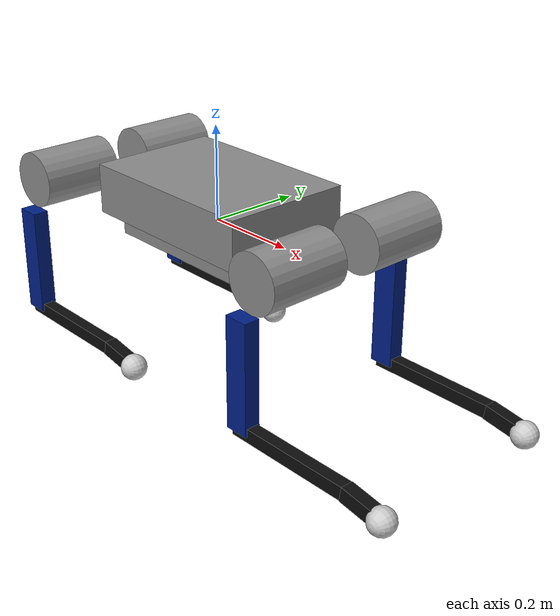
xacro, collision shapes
<?xml version="1.0" encoding="utf-8"?>
<robot name="raibo2" xmlns:xacro="http://www.ros.org/wiki/xacro">

  <!-- ==================== Materials ==================== -->
  <material name="black">
    <color rgba="0.05 0.05 0.05 1.0"/>
  </material>
  <material name="blue">
    <color rgba="0.0 0.125 0.53 1.0"/>
  </material>
  <material name="white">
    <color rgba="0.8 0.8 0.8 1"/>
  </material>
  <material name="light_gray">
    <color rgba="0.55 0.55 0.55 1"/>
  </material>

  <!--Gazebo dummy root link -->
  <link name="dummy_root"/>

  <!-- ==================== TORSO / Base Link ==================== -->
  <link name="TORSO">
    <inertial>
      <origin xyz="-0.00656127 -0.00245156 0.04792171" rpy="0 0 0" />
      <mass value="17.85853726" />
      <inertia ixx="0.16133121" ixy="-0.02266443" ixz="-0.00329293"
               iyy="0.45026183" iyz="0.00163597" izz="0.57496634" />
    </inertial>
    <visual>
      <origin xyz="0 0 0" rpy="0 0 0" />
      <geometry>
        <mesh filename="package://gardo_description/meshes/TORSO.STL" />
      </geometry>
      <material name="light_gray"/>
    </visual>
    <collision>
      <origin xyz="0 0 0.045" rpy="0 0 0" />
      <geometry>
        <box size="0.4200 0.28 0.105"/>
      </geometry>
    </collision>
    <collision>
      <origin xyz="0 0.0745 -0.0375" rpy="0 0 0" />
      <geometry>
        <box size="0.410 0.030 0.060"/>
      </geometry>
    </collision>
    <collision>
      <origin xyz="0 -0.0745 -0.0375" rpy="0 0 0" />
      <geometry>
        <box size="0.410 0.030 0.060"/>
      </geometry>
    </collision>
  </link>
  <joint name="dummy_to_base" type="fixed">
    <parent link="dummy_root"/>
    <child link="TORSO"/>
    <origin xyz="0 0 0" rpy="0 0 0"/>
  </joint>
  <!-- ==================== XACRO MACROS FOR LEGS ==================== -->

  <!-- Hip Macro -->
  <xacro:macro name="hip_link_and_joint" params="prefix joint_xyz col_y mass ix ixz iy iz axis_x">
    <link name="${prefix}_HIP">
      <inertial>
        <origin xyz="-0.03352808 ${col_y} 0.00003383" rpy="0 0 0" />
        <mass value="${mass}" />
        <inertia ixx="${ix}" ixy="-0.00143781" ixz="${ixz}" iyy="${iy}" iyz="-0.00000298" izz="${iz}" />
      </inertial>
      <visual>
        <origin xyz="0 0 0" rpy="0 0 0" />
        <geometry>
          <mesh filename="package://gardo_description/meshes/${prefix}_HIP.STL" />
        </geometry>
        <material name="light_gray"/>
      </visual>
      <collision>
        <origin rpy="1.57079632679 0 0" xyz="0 ${col_y} 0"/>
        <geometry>
          <cylinder length="0.17404" radius="0.0595"/>
        </geometry>
      </collision>
    </link>

    <joint name="${prefix}_HAA" type="revolute">
      <origin xyz="${joint_xyz}" rpy="0 0 0" />
      <parent link="TORSO" />
      <child link="${prefix}_HIP" />
      <axis xyz="${axis_x} 0 0" />
      <limit lower="-1.5708" upper="1.5708" effort="90.8558" velocity="30.0091" />
      <dynamics damping="0.0" friction="0.0" rotor_inertia="0.022811353" />
    </joint>
  </xacro:macro>

  <!-- Thigh Macro -->
  <xacro:macro name="thigh_link_and_joint" params="prefix joint_y mass ix ixy ixz iy iyz iz">
    <link name="${prefix}_THIGH">
      <inertial>
        <origin xyz="-0.00555044 ${joint_y/2} -0.02775098" rpy="0 0 0" />
        <mass value="${mass}" />
        <inertia ixx="${ix}" ixy="${ixy}" ixz="${ixz}" iyy="${iy}" iyz="${iyz}" izz="${iz}" />
      </inertial>
      <visual>
        <origin xyz="0 0 0" rpy="0 0 0" />
        <geometry>
          <mesh filename="package://gardo_description/meshes/${prefix}_THIGH.STL" />
        </geometry>
        <material name="blue"/>
      </visual>
      <collision>
        <origin rpy="0 0 0" xyz="-0.04575 0 -0.20283"/>
        <geometry>
          <box size="0.05150 0.03446 0.23435"/>
        </geometry>
      </collision>
    </link>

    <joint name="${prefix}_HFE" type="revolute">
      <origin xyz="0 ${joint_y} 0" rpy="0 0 0" />
      <parent link="${prefix}_HIP" />
      <child link="${prefix}_THIGH" />
      <axis xyz="0 1 0" />
      <limit lower="-6.2832" upper="6.2832" effort="90.8558" velocity="30.0091" />
      <dynamics damping="0.0" friction="0.0" rotor_inertia="0.022811353" />
    </joint>
  </xacro:macro>

  <!-- Shank Macro -->
  <xacro:macro name="shank_link_and_joint" params="prefix ixy iyz">
    <link name="${prefix}_SHANK">
      <inertial>
        <origin xyz="-0.00047821 0.00002607 -0.07606014" rpy="0 0 0" />
        <mass value="0.32743890" />
        <inertia ixx="0.00335434" ixy="${ixy}" ixz="0.00002929" iyy="0.00336066" iyz="${iyz}" izz="0.00006285" />
      </inertial>
      <visual>
        <origin xyz="0 0 0" rpy="0 0 0" />
        <geometry>
          <mesh filename="package://gardo_description/meshes/${prefix}_SHANK.STL" />
        </geometry>
        <material name="black"/>
      </visual>
      <collision>
        <origin rpy="0 1.528031849 0" xyz="0.00606 0 -0.08162"/>
        <geometry>
          <box size="0.2865 0.02586 0.029"/>
        </geometry>
      </collision>
      <collision>
        <origin rpy="0 1.688031849 0" xyz="0.00666 0 -0.26162"/>
        <geometry>
          <box size="0.0865 0.02686 0.031"/>
        </geometry>
      </collision>
    </link>

    <joint name="${prefix}_KFE" type="revolute">
      <origin xyz="0 0 -0.32" rpy="0 0 0" />
      <parent link="${prefix}_THIGH" />
      <child link="${prefix}_SHANK" />
      <axis xyz="0 1 0" />
      <limit lower="-2.6417" upper="-0.41469" effort="90.8558" velocity="30.0091" />
      <dynamics damping="0.0" friction="0.0" rotor_inertia="0.022811353" />
    </joint>
  </xacro:macro>

  <!-- Foot Macro -->
  <xacro:macro name="foot_link_and_joint" params="prefix">
    <link name="${prefix}_FOOT">
      <inertial>
        <origin xyz="0.00070079 0.00010019 0.00430738" rpy="0 0 0" />
        <mass value="0.10268513" />
        <inertia ixx="0.00002730" ixy="0.00000000" ixz="-0.00000058" iyy="0.00002753" iyz="0.00000003" izz="0.00003039" />
      </inertial>

      <!-- Shift visual up by radius (0.0275) so link origin is at the bottom -->
      <visual>
        <origin xyz="0 0 0" rpy="0 0 0" />
        <geometry>
          <mesh filename="package://gardo_description/meshes/${prefix}_FOOT.STL" />
        </geometry>
        <material name="white"/>
      </visual>

      <!-- Shift collision up by radius (0.0275) so link origin is at the bottom -->
      <collision>
        <origin rpy="1.57079632679 0 0" xyz="0 0 0"/>
        <geometry>
          <sphere radius="0.0275"/>
        </geometry>
        <material name="">
          <contact name="${prefix}_FOOT_MATERIAL"/>
        </material>
      </collision>
    </link>

    <joint name="${prefix}_S2F" type="fixed">
      <!-- Keep your original joint length; the link origin is now shifted to the ground contact -->
      <origin xyz="0 0 -0.30404017" rpy="0 0 0" />
      <parent link="${prefix}_SHANK" />
      <child link="${prefix}_FOOT" />
      <axis xyz="0 0 0" />
    </joint>
  </xacro:macro>

  <!-- Full Leg Assembly Wrapper Macro -->
  <xacro:macro name="make_leg" params="prefix joint_xyz col_y hip_mass hip_ix hip_ixz hip_iy hip_iz thigh_y thigh_mass thigh_ix thigh_ixy thigh_ixz thigh_iy thigh_iyz thigh_iz shank_ixy shank_iyz axis_x">
    <xacro:hip_link_and_joint prefix="${prefix}" joint_xyz="${joint_xyz}" col_y="${col_y}" mass="${hip_mass}" ix="${hip_ix}" ixz="${hip_ixz}" iy="${hip_iy}" iz="${hip_iz}" axis_x="${axis_x}" />
    <xacro:thigh_link_and_joint prefix="${prefix}" joint_y="${thigh_y}" mass="${thigh_mass}" ix="${thigh_ix}" ixy="${thigh_ixy}" ixz="${thigh_ixz}" iy="${thigh_iy}" iyz="${thigh_iyz}" iz="${thigh_iz}" />
    <xacro:shank_link_and_joint prefix="${prefix}" ixy="${shank_ixy}" iyz="${shank_iyz}" />
    <xacro:foot_link_and_joint prefix="${prefix}" />
  </xacro:macro>

  <!-- ==================== LEG INSTANTIATIONS ==================== -->

  <!-- Left Front (LF) Leg -->
  <xacro:make_leg prefix="LF" joint_xyz="0.34740000 0.10150000 0.04350000" col_y="0.02652"
                  hip_mass="1.95398841" hip_ix="0.00348543" hip_ixz="-0.00000041" hip_iy="0.00824115" hip_iz="0.00733533"
                  thigh_y="0.09453000" thigh_mass="3.12189597" thigh_ix="0.02699740" thigh_ixy="-0.00084218" thigh_ixz="0.00244569" thigh_iy="0.02501054" thigh_iyz="-0.00419581" thigh_iz="0.00901983"
                  shank_ixy="0.00000000" shank_iyz="0.00000162" axis_x="1" />

  <!-- Right Front (RF) Leg -->
  <xacro:make_leg prefix="RF" joint_xyz="0.34740000 -0.10150000 0.04350000" col_y="-0.02652"
                  hip_mass="1.95398841" hip_ix="0.00348565" hip_ixz="0.00000079" hip_iy="0.00823964" hip_iz="0.00733359"
                  thigh_y="-0.09453000" thigh_mass="3.12189613" thigh_ix="0.02697992" thigh_ixy="0.00084612" thigh_ixz="0.00244736" thigh_iy="0.02499526" thigh_iyz="0.00418673" thigh_iz="0.00902204"
                  shank_ixy="0.00000000" shank_iyz="0.00000282" axis_x="1" />

  <!-- Left Hind (LH) Leg -->
  <xacro:make_leg prefix="LH" joint_xyz="-0.34740000 0.10150000 0.04350000" col_y="0.02652"
                  hip_mass="1.95398841" hip_ix="0.00348543" hip_ixz="-0.00000041" hip_iy="0.00824115" hip_iz="0.00733533"
                  thigh_y="0.09453000" thigh_mass="3.12189597" thigh_ix="0.02699858" thigh_ixy="-0.00084178" thigh_ixz="0.00244526" thigh_iy="0.02501151" thigh_iyz="-0.00419624" thigh_iz="0.00901962"
                  shank_ixy="0.00000000" shank_iyz="0.00000162" axis_x="1" />

  <!-- Right Hind (RH) Leg -->
  <xacro:make_leg prefix="RH" joint_xyz="-0.34740000 -0.10150000 0.04350000" col_y="-0.02652"
                  hip_mass="1.95398841" hip_ix="0.00348577" hip_ixz="0.00000001" hip_iy="0.00824040" hip_iz="0.00733422"
                  thigh_y="-0.09453000" thigh_mass="3.12189613" thigh_ix="0.02697952" thigh_ixy="0.00084619" thigh_ixz="0.00244741" thigh_iy="0.02499506" thigh_iyz="0.00418663" thigh_iz="0.00902223"
                  shank_ixy="0.00000001" shank_iyz="0.00000334" axis_x="1" />

  <!-- ==================== SENSORS & AUXILIARY LINKS ==================== -->

  <link name="d430_front" model="d430" sensor="realsense430.xml" />
  <joint name="d430_front_joint" type="fixed">
    <origin rpy="0 0.872665 0" xyz="0.21916365308 0.00785000000 0.00348853910"/>
    <parent link="TORSO"/>
    <child link="d430_front"/>
  </joint>

  <link name="d430_rear" model="d430" sensor="realsense430.xml" />
  <joint name="d430_rear_joint" type="fixed">
    <origin rpy="0 0.872665 3.141592" xyz="-0.21933203618 -0.00785000000 0.00349467628"/>
    <parent link="TORSO"/>
    <child link="d430_rear"/>
  </joint>

  <link name="base_imu" model="Microstrain_3DM-*" sensor="imu.xml" />
  <joint name="imu_joint" type="fixed">
    <origin rpy="0. 0. 0." xyz="0. 0. 0."/>
    <parent link="TORSO"/>
    <child link="base_imu"/>
  </joint>

  <xacro:macro name="leg_control_interfaces" params="prefix">
    <joint name="${prefix}_HAA">
      <command_interface name="effort"/>
      <state_interface name="position"/><state_interface name="velocity"/><state_interface name="effort"/>
    </joint>
    <joint name="${prefix}_HFE">
      <command_interface name="effort"/>
      <state_interface name="position"/><state_interface name="velocity"/><state_interface name="effort"/>
    </joint>
    <joint name="${prefix}_KFE">
      <command_interface name="effort"/>
      <state_interface name="position"/><state_interface name="velocity"/><state_interface name="effort"/>
    </joint>
  </xacro:macro>

  <ros2_control name="GazeboSimSystem" type="system">
    <hardware>
      <plugin>gz_ros2_control/GazeboSimSystem</plugin>
    </hardware>
    <xacro:leg_control_interfaces prefix="LF" />
    <xacro:leg_control_interfaces prefix="RF" />
    <xacro:leg_control_interfaces prefix="LH" />
    <xacro:leg_control_interfaces prefix="RH" />
  </ros2_control>

  <gazebo>
    <plugin filename="gz_ros2_control-system" name="gz_ros2_control::GazeboSimROS2ControlPlugin">
      <parameters>$(find gardo_description)/config/gardo_controllers.yaml</parameters>
      <parameters_from_ros>
          <parameter name="use_sim_time" type="bool">true</parameter>
      </parameters_from_ros>
    </plugin>
  </gazebo>

  <gazebo reference="TORSO">
    <sensor name="imu_sensor" type="imu">
      <always_on>1</always_on>
      <update_rate>1000</update_rate>
      <visualize>true</visualize>
      <topic>imu</topic>
    </sensor>
  </gazebo>
  <gazebo>
    <plugin filename="libgz-sim-imu-system.so" name="gz::sim::systems::Imu"/>
  </gazebo>

  <gazebo>
    <plugin filename="libgz-sim-odometry-publisher-system.so" name="gz::sim::systems::OdometryPublisher">
        <odom_frame>odom</odom_frame>
        <robot_base_frame>TORSO</robot_base_frame>
        <odom_publish_frequency>1000</odom_publish_frequency>
        <odom_topic>odom</odom_topic>
        <dimensions>3</dimensions>
    </plugin>
  </gazebo>

  <gazebo>
    <plugin filename="libgz-sim-joint-state-publisher-system.so" name="gz::sim::systems::JointStatePublisher">
    <topic>joint_states</topic>
    </plugin>
  </gazebo>
</robot>
